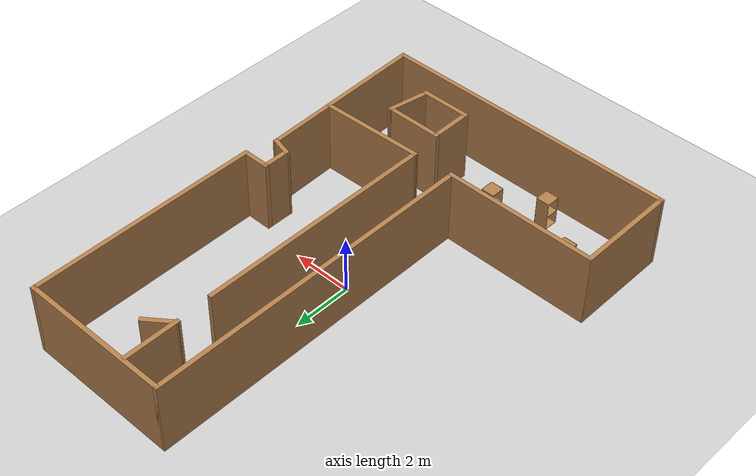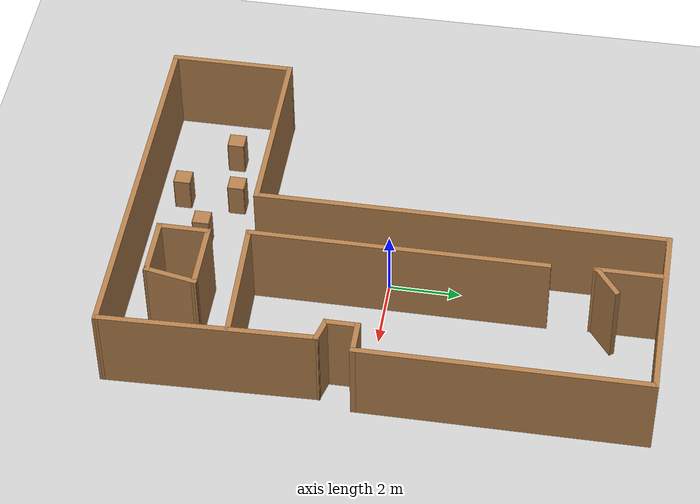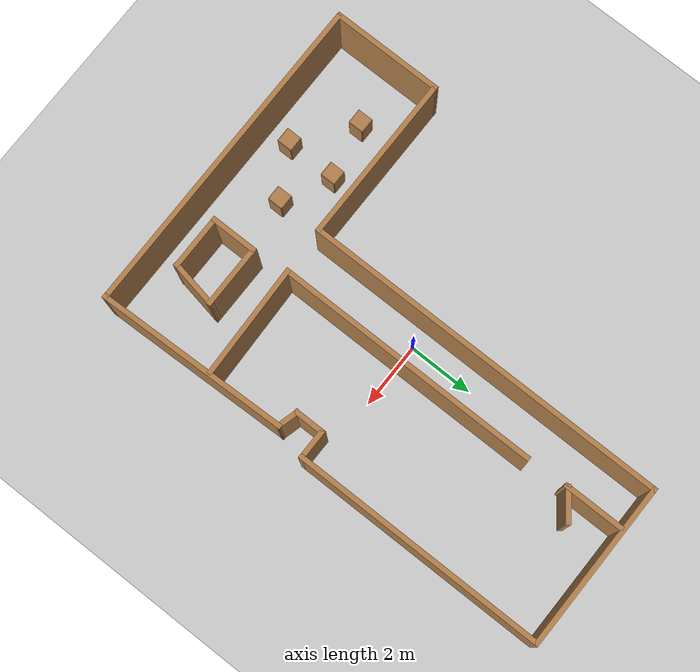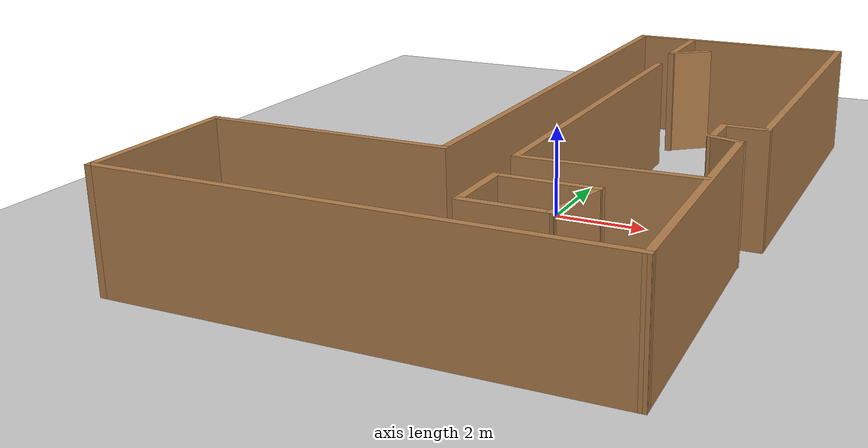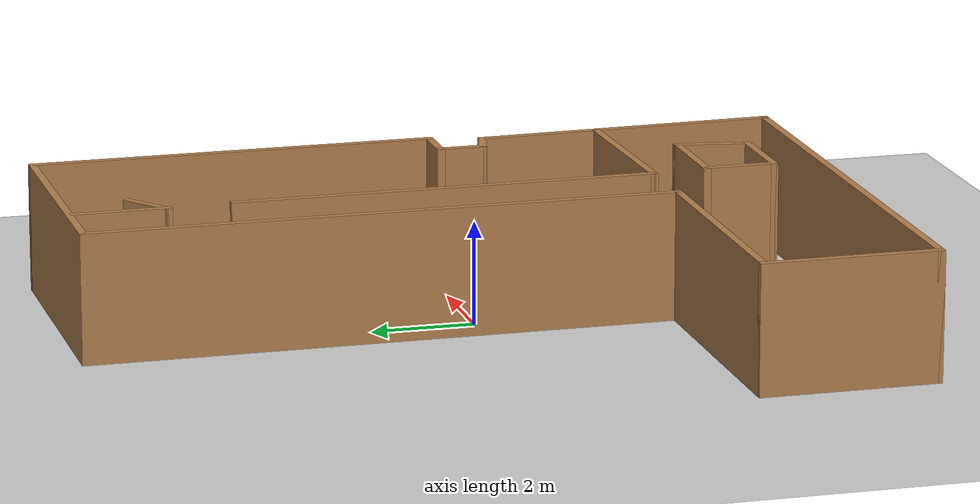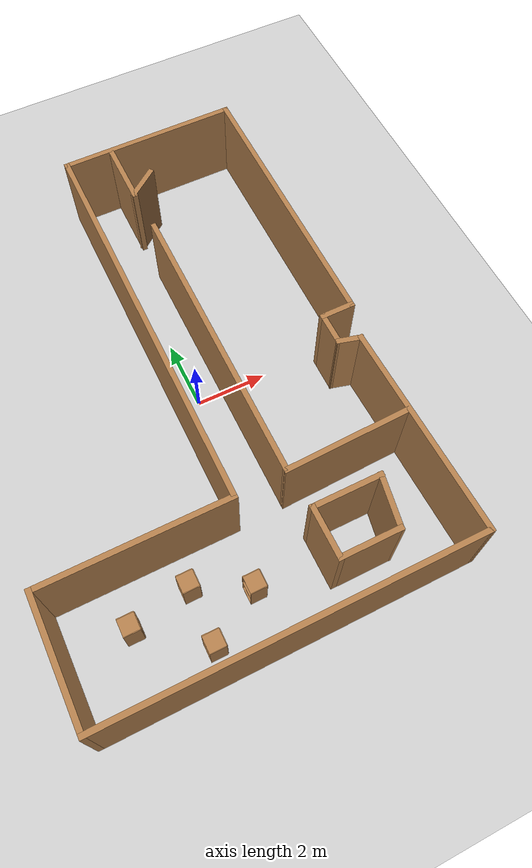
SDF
<sdf version="1.6">
 <world name="default">
  <model name="ground_plane">
   <static>1</static>
   <link name="link">
    <collision name="collision">
     <geometry><plane><normal>0 0 1</normal><size>100 100</size></plane></geometry>
     <surface><friction><ode><mu>100</mu><mu2>50</mu2></ode></friction></surface>
    </collision>
    <visual name="visual">
     <cast_shadows>0</cast_shadows>
     <geometry><plane><normal>0 0 1</normal><size>100 100</size></plane></geometry>
     <material>
      <script><uri>file://media/materials/scripts/gazebo.material</uri><name>Gazebo/Grey</name></script>
     </material>
    </visual>
   </link>
  </model>
  <model name="map_25">
   <link name="Wall_0">
    <pose>-0.05 -7.34892 0 0 -0 3.14159</pose>
    <visual name="Wall_0_Visual">
     <pose>0 0 1.25 0 -0 0</pose>
     <geometry><box><size>10.25 0.15 2.5</size></box></geometry>
     <material>
      <script><uri>file://media/materials/scripts/gazebo.material</uri><name>Gazebo/Wood</name></script>
      <ambient>1 1 1 1</ambient>
      <shader type="pixel"/>
     </material>
     <meta><layer>0</layer></meta>
    </visual>
    <collision name="Wall_0_Collision">
     <pose>0 0 1.25 0 -0 0</pose>
     <geometry><box><size>10.25 0.15 2.5</size></box></geometry>
     <surface>
      <friction>
       <ode><mu>1</mu><mu2>1</mu2><fdir1>0 0 0</fdir1><slip1>0</slip1><slip2>0</slip2></ode>
       <torsional>
        <coefficient>1</coefficient>
        <patch_radius>0</patch_radius>
        <surface_radius>0</surface_radius>
        <use_patch_radius>1</use_patch_radius>
        <ode><slip>0</slip></ode>
       </torsional>
      </friction>
      <bounce><restitution_coefficient>0</restitution_coefficient><threshold>1e+06</threshold></bounce>
      <contact>
       <collide_without_contact>0</collide_without_contact>
       <collide_without_contact_bitmask>1</collide_without_contact_bitmask>
       <collide_bitmask>1</collide_bitmask>
       <ode>
        <soft_cfm>0</soft_cfm>
        <soft_erp>0.2</soft_erp>
        <kp>1e+13</kp>
        <kd>1</kd>
        <max_vel>0.01</max_vel>
        <min_depth>0</min_depth>
       </ode>
       <bullet>
        <split_impulse>1</split_impulse>
        <split_impulse_penetration_threshold>-0.01</split_impulse_penetration_threshold>
        <soft_cfm>0</soft_cfm>
        <soft_erp>0.2</soft_erp>
        <kp>1e+13</kp>
        <kd>1</kd>
       </bullet>
      </contact>
     </surface>
    </collision>
   </link>
   <link name="Wall_1">
    <pose>-5.1 -5.67392 0 0 -0 1.5708</pose>
    <visual name="Wall_1_Visual">
     <pose>0 0 1.25 0 -0 0</pose>
     <geometry><box><size>3.5 0.15 2.5</size></box></geometry>
     <material>
      <script><uri>file://media/materials/scripts/gazebo.material</uri><name>Gazebo/Wood</name></script>
      <ambient>1 1 1 1</ambient>
      <shader type="pixel"/>
     </material>
     <meta><layer>0</layer></meta>
    </visual>
    <collision name="Wall_1_Collision">
     <pose>0 0 1.25 0 -0 0</pose>
     <geometry><box><size>3.5 0.15 2.5</size></box></geometry>
     <surface>
      <friction>
       <ode><mu>1</mu><mu2>1</mu2><fdir1>0 0 0</fdir1><slip1>0</slip1><slip2>0</slip2></ode>
       <torsional>
        <coefficient>1</coefficient>
        <patch_radius>0</patch_radius>
        <surface_radius>0</surface_radius>
        <use_patch_radius>1</use_patch_radius>
        <ode><slip>0</slip></ode>
       </torsional>
      </friction>
      <bounce><restitution_coefficient>0</restitution_coefficient><threshold>1e+06</threshold></bounce>
      <contact>
       <collide_without_contact>0</collide_without_contact>
       <collide_without_contact_bitmask>1</collide_without_contact_bitmask>
       <collide_bitmask>1</collide_bitmask>
       <ode>
        <soft_cfm>0</soft_cfm>
        <soft_erp>0.2</soft_erp>
        <kp>1e+13</kp>
        <kd>1</kd>
        <max_vel>0.01</max_vel>
        <min_depth>0</min_depth>
       </ode>
       <bullet>
        <split_impulse>1</split_impulse>
        <split_impulse_penetration_threshold>-0.01</split_impulse_penetration_threshold>
        <soft_cfm>0</soft_cfm>
        <soft_erp>0.2</soft_erp>
        <kp>1e+13</kp>
        <kd>1</kd>
       </bullet>
      </contact>
     </surface>
    </collision>
   </link>
   <link name="Wall_14">
    <pose>1.41533 0.157617 0 0 0 -1.5708</pose>
    <visual name="Wall_14_Visual">
     <pose>0 0 1.25 0 -0 0</pose>
     <geometry><box><size>8.25 0.15 2.5</size></box></geometry>
     <material>
      <script><uri>file://media/materials/scripts/gazebo.material</uri><name>Gazebo/Wood</name></script>
      <ambient>1 1 1 1</ambient>
      <shader type="pixel"/>
     </material>
     <meta><layer>0</layer></meta>
    </visual>
    <collision name="Wall_14_Collision">
     <pose>0 0 1.25 0 -0 0</pose>
     <geometry><box><size>8.25 0.15 2.5</size></box></geometry>
     <surface>
      <friction>
       <ode><mu>1</mu><mu2>1</mu2><fdir1>0 0 0</fdir1><slip1>0</slip1><slip2>0</slip2></ode>
       <torsional>
        <coefficient>1</coefficient>
        <patch_radius>0</patch_radius>
        <surface_radius>0</surface_radius>
        <use_patch_radius>1</use_patch_radius>
        <ode><slip>0</slip></ode>
       </torsional>
      </friction>
      <bounce><restitution_coefficient>0</restitution_coefficient><threshold>1e+06</threshold></bounce>
      <contact>
       <collide_without_contact>0</collide_without_contact>
       <collide_without_contact_bitmask>1</collide_without_contact_bitmask>
       <collide_bitmask>1</collide_bitmask>
       <ode>
        <soft_cfm>0</soft_cfm>
        <soft_erp>0.2</soft_erp>
        <kp>1e+13</kp>
        <kd>1</kd>
        <max_vel>0.01</max_vel>
        <min_depth>0</min_depth>
       </ode>
       <bullet>
        <split_impulse>1</split_impulse>
        <split_impulse_penetration_threshold>-0.01</split_impulse_penetration_threshold>
        <soft_cfm>0</soft_cfm>
        <soft_erp>0.2</soft_erp>
        <kp>1e+13</kp>
        <kd>1</kd>
       </bullet>
      </contact>
     </surface>
    </collision>
   </link>
   <link name="Wall_15">
    <pose>3.12632 -3.89238 0 0 -0 0.03126</pose>
    <visual name="Wall_15_Visual">
     <pose>0 0 1.25 0 -0 0</pose>
     <geometry><box><size>3.57365 0.15 2.5</size></box></geometry>
     <material>
      <script><uri>file://media/materials/scripts/gazebo.material</uri><name>Gazebo/Wood</name></script>
      <ambient>1 1 1 1</ambient>
      <shader type="pixel"/>
     </material>
     <meta><layer>0</layer></meta>
    </visual>
    <collision name="Wall_15_Collision">
     <pose>0 0 1.25 0 -0 0</pose>
     <geometry><box><size>3.57365 0.15 2.5</size></box></geometry>
     <surface>
      <friction>
       <ode><mu>1</mu><mu2>1</mu2><fdir1>0 0 0</fdir1><slip1>0</slip1><slip2>0</slip2></ode>
       <torsional>
        <coefficient>1</coefficient>
        <patch_radius>0</patch_radius>
        <surface_radius>0</surface_radius>
        <use_patch_radius>1</use_patch_radius>
        <ode><slip>0</slip></ode>
       </torsional>
      </friction>
      <bounce><restitution_coefficient>0</restitution_coefficient><threshold>1e+06</threshold></bounce>
      <contact>
       <collide_without_contact>0</collide_without_contact>
       <collide_without_contact_bitmask>1</collide_without_contact_bitmask>
       <collide_bitmask>1</collide_bitmask>
       <ode>
        <soft_cfm>0</soft_cfm>
        <soft_erp>0.2</soft_erp>
        <kp>1e+13</kp>
        <kd>1</kd>
        <max_vel>0.01</max_vel>
        <min_depth>0</min_depth>
       </ode>
       <bullet>
        <split_impulse>1</split_impulse>
        <split_impulse_penetration_threshold>-0.01</split_impulse_penetration_threshold>
        <soft_cfm>0</soft_cfm>
        <soft_erp>0.2</soft_erp>
        <kp>1e+13</kp>
        <kd>1</kd>
       </bullet>
      </contact>
     </surface>
    </collision>
   </link>
   <link name="Wall_2">
    <pose>-2.55 -3.99892 0 0 -0 0</pose>
    <visual name="Wall_2_Visual">
     <pose>0 0 1.25 0 -0 0</pose>
     <geometry><box><size>5.25 0.15 2.5</size></box></geometry>
     <material>
      <script><uri>file://media/materials/scripts/gazebo.material</uri><name>Gazebo/Wood</name></script>
      <ambient>1 1 1 1</ambient>
      <shader type="pixel"/>
     </material>
     <meta><layer>0</layer></meta>
    </visual>
    <collision name="Wall_2_Collision">
     <pose>0 0 1.25 0 -0 0</pose>
     <geometry><box><size>5.25 0.15 2.5</size></box></geometry>
     <surface>
      <friction>
       <ode><mu>1</mu><mu2>1</mu2><fdir1>0 0 0</fdir1><slip1>0</slip1><slip2>0</slip2></ode>
       <torsional>
        <coefficient>1</coefficient>
        <patch_radius>0</patch_radius>
        <surface_radius>0</surface_radius>
        <use_patch_radius>1</use_patch_radius>
        <ode><slip>0</slip></ode>
       </torsional>
      </friction>
      <bounce><restitution_coefficient>0</restitution_coefficient><threshold>1e+06</threshold></bounce>
      <contact>
       <collide_without_contact>0</collide_without_contact>
       <collide_without_contact_bitmask>1</collide_without_contact_bitmask>
       <collide_bitmask>1</collide_bitmask>
       <ode>
        <soft_cfm>0</soft_cfm>
        <soft_erp>0.2</soft_erp>
        <kp>1e+13</kp>
        <kd>1</kd>
        <max_vel>0.01</max_vel>
        <min_depth>0</min_depth>
       </ode>
       <bullet>
        <split_impulse>1</split_impulse>
        <split_impulse_penetration_threshold>-0.01</split_impulse_penetration_threshold>
        <soft_cfm>0</soft_cfm>
        <soft_erp>0.2</soft_erp>
        <kp>1e+13</kp>
        <kd>1</kd>
       </bullet>
      </contact>
     </surface>
    </collision>
   </link>
   <link name="Wall_29">
    <pose>1.35601 6.37111 0 0 0 -1.5708</pose>
    <visual name="Wall_29_Visual">
     <pose>0 0 1.25 0 -0 0</pose>
     <geometry><box><size>1.92214 0.15 2.5</size></box></geometry>
     <material>
      <script><uri>file://media/materials/scripts/gazebo.material</uri><name>Gazebo/Wood</name></script>
      <ambient>1 1 1 1</ambient>
      <shader type="pixel"/>
     </material>
     <meta><layer>0</layer></meta>
    </visual>
    <collision name="Wall_29_Collision">
     <pose>0 0 1.25 0 -0 0</pose>
     <geometry><box><size>1.92214 0.15 2.5</size></box></geometry>
     <surface>
      <friction>
       <ode><mu>1</mu><mu2>1</mu2><fdir1>0 0 0</fdir1><slip1>0</slip1><slip2>0</slip2></ode>
       <torsional>
        <coefficient>1</coefficient>
        <patch_radius>0</patch_radius>
        <surface_radius>0</surface_radius>
        <use_patch_radius>1</use_patch_radius>
        <ode><slip>0</slip></ode>
       </torsional>
      </friction>
      <bounce><restitution_coefficient>0</restitution_coefficient><threshold>1e+06</threshold></bounce>
      <contact>
       <collide_without_contact>0</collide_without_contact>
       <collide_without_contact_bitmask>1</collide_without_contact_bitmask>
       <collide_bitmask>1</collide_bitmask>
       <ode>
        <soft_cfm>0</soft_cfm>
        <soft_erp>0.2</soft_erp>
        <kp>1e+13</kp>
        <kd>1</kd>
        <max_vel>0.01</max_vel>
        <min_depth>0</min_depth>
       </ode>
       <bullet>
        <split_impulse>1</split_impulse>
        <split_impulse_penetration_threshold>-0.01</split_impulse_penetration_threshold>
        <soft_cfm>0</soft_cfm>
        <soft_erp>0.2</soft_erp>
        <kp>1e+13</kp>
        <kd>1</kd>
       </bullet>
      </contact>
     </surface>
    </collision>
   </link>
   <link name="Wall_3">
    <pose>0 1.67608 0 0 -0 1.5708</pose>
    <visual name="Wall_3_Visual">
     <pose>0 0 1.25 0 -0 0</pose>
     <geometry><box><size>11.5 0.15 2.5</size></box></geometry>
     <material>
      <script><uri>file://media/materials/scripts/gazebo.material</uri><name>Gazebo/Wood</name></script>
      <ambient>1 1 1 1</ambient>
      <shader type="pixel"/>
     </material>
     <meta><layer>0</layer></meta>
    </visual>
    <collision name="Wall_3_Collision">
     <pose>0 0 1.25 0 -0 0</pose>
     <geometry><box><size>11.5 0.15 2.5</size></box></geometry>
     <surface>
      <friction>
       <ode><mu>1</mu><mu2>1</mu2><fdir1>0 0 0</fdir1><slip1>0</slip1><slip2>0</slip2></ode>
       <torsional>
        <coefficient>1</coefficient>
        <patch_radius>0</patch_radius>
        <surface_radius>0</surface_radius>
        <use_patch_radius>1</use_patch_radius>
        <ode><slip>0</slip></ode>
       </torsional>
      </friction>
      <bounce><restitution_coefficient>0</restitution_coefficient><threshold>1e+06</threshold></bounce>
      <contact>
       <collide_without_contact>0</collide_without_contact>
       <collide_without_contact_bitmask>1</collide_without_contact_bitmask>
       <collide_bitmask>1</collide_bitmask>
       <ode>
        <soft_cfm>0</soft_cfm>
        <soft_erp>0.2</soft_erp>
        <kp>1e+13</kp>
        <kd>1</kd>
        <max_vel>0.01</max_vel>
        <min_depth>0</min_depth>
       </ode>
       <bullet>
        <split_impulse>1</split_impulse>
        <split_impulse_penetration_threshold>-0.01</split_impulse_penetration_threshold>
        <soft_cfm>0</soft_cfm>
        <soft_erp>0.2</soft_erp>
        <kp>1e+13</kp>
        <kd>1</kd>
       </bullet>
      </contact>
     </surface>
    </collision>
   </link>
   <link name="Wall_30">
    <pose>1.72407 5.80307 0 0 -0 0.655241</pose>
    <visual name="Wall_30_Visual">
     <pose>0 0 1.25 0 -0 0</pose>
     <geometry><box><size>1.07839 0.15 2.5</size></box></geometry>
     <material>
      <script><uri>file://media/materials/scripts/gazebo.material</uri><name>Gazebo/Wood</name></script>
      <ambient>1 1 1 1</ambient>
      <shader type="pixel"/>
     </material>
     <meta><layer>0</layer></meta>
    </visual>
    <collision name="Wall_30_Collision">
     <pose>0 0 1.25 0 -0 0</pose>
     <geometry><box><size>1.07839 0.15 2.5</size></box></geometry>
     <surface>
      <friction>
       <ode><mu>1</mu><mu2>1</mu2><fdir1>0 0 0</fdir1><slip1>0</slip1><slip2>0</slip2></ode>
       <torsional>
        <coefficient>1</coefficient>
        <patch_radius>0</patch_radius>
        <surface_radius>0</surface_radius>
        <use_patch_radius>1</use_patch_radius>
        <ode><slip>0</slip></ode>
       </torsional>
      </friction>
      <bounce><restitution_coefficient>0</restitution_coefficient><threshold>1e+06</threshold></bounce>
      <contact>
       <collide_without_contact>0</collide_without_contact>
       <collide_without_contact_bitmask>1</collide_without_contact_bitmask>
       <collide_bitmask>1</collide_bitmask>
       <ode>
        <soft_cfm>0</soft_cfm>
        <soft_erp>0.2</soft_erp>
        <kp>1e+13</kp>
        <kd>1</kd>
        <max_vel>0.01</max_vel>
        <min_depth>0</min_depth>
       </ode>
       <bullet>
        <split_impulse>1</split_impulse>
        <split_impulse_penetration_threshold>-0.01</split_impulse_penetration_threshold>
        <soft_cfm>0</soft_cfm>
        <soft_erp>0.2</soft_erp>
        <kp>1e+13</kp>
        <kd>1</kd>
       </bullet>
      </contact>
     </surface>
    </collision>
   </link>
   <link name="Wall_32">
    <pose>2.46009 -5.04355 0 0 -0 3.14159</pose>
    <visual name="Wall_32_Visual">
     <pose>0 0 1.25 0 -0 0</pose>
     <geometry><box><size>2 0.15 2.5</size></box></geometry>
     <material>
      <script><uri>file://media/materials/scripts/gazebo.material</uri><name>Gazebo/Wood</name></script>
      <ambient>1 1 1 1</ambient>
      <shader type="pixel"/>
     </material>
     <meta><layer>0</layer></meta>
    </visual>
    <collision name="Wall_32_Collision">
     <pose>0 0 1.25 0 -0 0</pose>
     <geometry><box><size>2 0.15 2.5</size></box></geometry>
     <surface>
      <friction>
       <ode><mu>1</mu><mu2>1</mu2><fdir1>0 0 0</fdir1><slip1>0</slip1><slip2>0</slip2></ode>
       <torsional>
        <coefficient>1</coefficient>
        <patch_radius>0</patch_radius>
        <surface_radius>0</surface_radius>
        <use_patch_radius>1</use_patch_radius>
        <ode><slip>0</slip></ode>
       </torsional>
      </friction>
      <bounce><restitution_coefficient>0</restitution_coefficient><threshold>1e+06</threshold></bounce>
      <contact>
       <collide_without_contact>0</collide_without_contact>
       <collide_without_contact_bitmask>1</collide_without_contact_bitmask>
       <collide_bitmask>1</collide_bitmask>
       <ode>
        <soft_cfm>0</soft_cfm>
        <soft_erp>0.2</soft_erp>
        <kp>1e+13</kp>
        <kd>1</kd>
        <max_vel>0.01</max_vel>
        <min_depth>0</min_depth>
       </ode>
       <bullet>
        <split_impulse>1</split_impulse>
        <split_impulse_penetration_threshold>-0.01</split_impulse_penetration_threshold>
        <soft_cfm>0</soft_cfm>
        <soft_erp>0.2</soft_erp>
        <kp>1e+13</kp>
        <kd>1</kd>
       </bullet>
      </contact>
     </surface>
    </collision>
   </link>
   <link name="Wall_33">
    <pose>1.53509 -5.71855 0 0 0 -1.5708</pose>
    <visual name="Wall_33_Visual">
     <pose>0 0 1.25 0 -0 0</pose>
     <geometry><box><size>1.5 0.15 2.5</size></box></geometry>
     <material>
      <script><uri>file://media/materials/scripts/gazebo.material</uri><name>Gazebo/Wood</name></script>
      <ambient>1 1 1 1</ambient>
      <shader type="pixel"/>
     </material>
     <meta><layer>0</layer></meta>
    </visual>
    <collision name="Wall_33_Collision">
     <pose>0 0 1.25 0 -0 0</pose>
     <geometry><box><size>1.5 0.15 2.5</size></box></geometry>
     <surface>
      <friction>
       <ode><mu>1</mu><mu2>1</mu2><fdir1>0 0 0</fdir1><slip1>0</slip1><slip2>0</slip2></ode>
       <torsional>
        <coefficient>1</coefficient>
        <patch_radius>0</patch_radius>
        <surface_radius>0</surface_radius>
        <use_patch_radius>1</use_patch_radius>
        <ode><slip>0</slip></ode>
       </torsional>
      </friction>
      <bounce><restitution_coefficient>0</restitution_coefficient><threshold>1e+06</threshold></bounce>
      <contact>
       <collide_without_contact>0</collide_without_contact>
       <collide_without_contact_bitmask>1</collide_without_contact_bitmask>
       <collide_bitmask>1</collide_bitmask>
       <ode>
        <soft_cfm>0</soft_cfm>
        <soft_erp>0.2</soft_erp>
        <kp>1e+13</kp>
        <kd>1</kd>
        <max_vel>0.01</max_vel>
        <min_depth>0</min_depth>
       </ode>
       <bullet>
        <split_impulse>1</split_impulse>
        <split_impulse_penetration_threshold>-0.01</split_impulse_penetration_threshold>
        <soft_cfm>0</soft_cfm>
        <soft_erp>0.2</soft_erp>
        <kp>1e+13</kp>
        <kd>1</kd>
       </bullet>
      </contact>
     </surface>
    </collision>
   </link>
   <link name="Wall_34">
    <pose>2.33509 -6.39355 0 0 -0 0</pose>
    <visual name="Wall_34_Visual">
     <pose>0 0 1.25 0 -0 0</pose>
     <geometry><box><size>1.75 0.15 2.5</size></box></geometry>
     <material>
      <script><uri>file://media/materials/scripts/gazebo.material</uri><name>Gazebo/Wood</name></script>
      <ambient>1 1 1 1</ambient>
      <shader type="pixel"/>
     </material>
     <meta><layer>0</layer></meta>
    </visual>
    <collision name="Wall_34_Collision">
     <pose>0 0 1.25 0 -0 0</pose>
     <geometry><box><size>1.75 0.15 2.5</size></box></geometry>
     <surface>
      <friction>
       <ode><mu>1</mu><mu2>1</mu2><fdir1>0 0 0</fdir1><slip1>0</slip1><slip2>0</slip2></ode>
       <torsional>
        <coefficient>1</coefficient>
        <patch_radius>0</patch_radius>
        <surface_radius>0</surface_radius>
        <use_patch_radius>1</use_patch_radius>
        <ode><slip>0</slip></ode>
       </torsional>
      </friction>
      <bounce><restitution_coefficient>0</restitution_coefficient><threshold>1e+06</threshold></bounce>
      <contact>
       <collide_without_contact>0</collide_without_contact>
       <collide_without_contact_bitmask>1</collide_without_contact_bitmask>
       <collide_bitmask>1</collide_bitmask>
       <ode>
        <soft_cfm>0</soft_cfm>
        <soft_erp>0.2</soft_erp>
        <kp>1e+13</kp>
        <kd>1</kd>
        <max_vel>0.01</max_vel>
        <min_depth>0</min_depth>
       </ode>
       <bullet>
        <split_impulse>1</split_impulse>
        <split_impulse_penetration_threshold>-0.01</split_impulse_penetration_threshold>
        <soft_cfm>0</soft_cfm>
        <soft_erp>0.2</soft_erp>
        <kp>1e+13</kp>
        <kd>1</kd>
       </bullet>
      </contact>
     </surface>
    </collision>
   </link>
   <link name="Wall_35">
    <pose>3.26009 -5.71855 0 0 -0 1.38769</pose>
    <visual name="Wall_35_Visual">
     <pose>0 0 1.25 0 -0 0</pose>
     <geometry><box><size>1.52295 0.15 2.5</size></box></geometry>
     <material>
      <script><uri>file://media/materials/scripts/gazebo.material</uri><name>Gazebo/Wood</name></script>
      <ambient>1 1 1 1</ambient>
      <shader type="pixel"/>
     </material>
     <meta><layer>0</layer></meta>
    </visual>
    <collision name="Wall_35_Collision">
     <pose>0 0 1.25 0 -0 0</pose>
     <geometry><box><size>1.52295 0.15 2.5</size></box></geometry>
     <surface>
      <friction>
       <ode><mu>1</mu><mu2>1</mu2><fdir1>0 0 0</fdir1><slip1>0</slip1><slip2>0</slip2></ode>
       <torsional>
        <coefficient>1</coefficient>
        <patch_radius>0</patch_radius>
        <surface_radius>0</surface_radius>
        <use_patch_radius>1</use_patch_radius>
        <ode><slip>0</slip></ode>
       </torsional>
      </friction>
      <bounce><restitution_coefficient>0</restitution_coefficient><threshold>1e+06</threshold></bounce>
      <contact>
       <collide_without_contact>0</collide_without_contact>
       <collide_without_contact_bitmask>1</collide_without_contact_bitmask>
       <collide_bitmask>1</collide_bitmask>
       <ode>
        <soft_cfm>0</soft_cfm>
        <soft_erp>0.2</soft_erp>
        <kp>1e+13</kp>
        <kd>1</kd>
        <max_vel>0.01</max_vel>
        <min_depth>0</min_depth>
       </ode>
       <bullet>
        <split_impulse>1</split_impulse>
        <split_impulse_penetration_threshold>-0.01</split_impulse_penetration_threshold>
        <soft_cfm>0</soft_cfm>
        <soft_erp>0.2</soft_erp>
        <kp>1e+13</kp>
        <kd>1</kd>
       </bullet>
      </contact>
     </surface>
    </collision>
   </link>
   <link name="Wall_4">
    <pose>2.55 7.35108 0 0 -0 0</pose>
    <visual name="Wall_4_Visual">
     <pose>0 0 1.25 0 -0 0</pose>
     <geometry><box><size>5.25 0.15 2.5</size></box></geometry>
     <material>
      <script><uri>file://media/materials/scripts/gazebo.material</uri><name>Gazebo/Wood</name></script>
      <ambient>1 1 1 1</ambient>
      <shader type="pixel"/>
     </material>
     <meta><layer>0</layer></meta>
    </visual>
    <collision name="Wall_4_Collision">
     <pose>0 0 1.25 0 -0 0</pose>
     <geometry><box><size>5.25 0.15 2.5</size></box></geometry>
     <surface>
      <friction>
       <ode><mu>1</mu><mu2>1</mu2><fdir1>0 0 0</fdir1><slip1>0</slip1><slip2>0</slip2></ode>
       <torsional>
        <coefficient>1</coefficient>
        <patch_radius>0</patch_radius>
        <surface_radius>0</surface_radius>
        <use_patch_radius>1</use_patch_radius>
        <ode><slip>0</slip></ode>
       </torsional>
      </friction>
      <bounce><restitution_coefficient>0</restitution_coefficient><threshold>1e+06</threshold></bounce>
      <contact>
       <collide_without_contact>0</collide_without_contact>
       <collide_without_contact_bitmask>1</collide_without_contact_bitmask>
       <collide_bitmask>1</collide_bitmask>
       <ode>
        <soft_cfm>0</soft_cfm>
        <soft_erp>0.2</soft_erp>
        <kp>1e+13</kp>
        <kd>1</kd>
        <max_vel>0.01</max_vel>
        <min_depth>0</min_depth>
       </ode>
       <bullet>
        <split_impulse>1</split_impulse>
        <split_impulse_penetration_threshold>-0.01</split_impulse_penetration_threshold>
        <soft_cfm>0</soft_cfm>
        <soft_erp>0.2</soft_erp>
        <kp>1e+13</kp>
        <kd>1</kd>
       </bullet>
      </contact>
     </surface>
    </collision>
   </link>
   <link name="Wall_5">
    <pose>5.1 3.42608 0 0 0 -1.5708</pose>
    <visual name="Wall_5_Visual">
     <pose>0 0 1.25 0 -0 0</pose>
     <geometry><box><size>8 0.15 2.5</size></box></geometry>
     <material>
      <script><uri>file://media/materials/scripts/gazebo.material</uri><name>Gazebo/Wood</name></script>
      <ambient>1 1 1 1</ambient>
      <shader type="pixel"/>
     </material>
     <meta><layer>0</layer></meta>
    </visual>
    <collision name="Wall_5_Collision">
     <pose>0 0 1.25 0 -0 0</pose>
     <geometry><box><size>8 0.15 2.5</size></box></geometry>
     <surface>
      <friction>
       <ode><mu>1</mu><mu2>1</mu2><fdir1>0 0 0</fdir1><slip1>0</slip1><slip2>0</slip2></ode>
       <torsional>
        <coefficient>1</coefficient>
        <patch_radius>0</patch_radius>
        <surface_radius>0</surface_radius>
        <use_patch_radius>1</use_patch_radius>
        <ode><slip>0</slip></ode>
       </torsional>
      </friction>
      <bounce><restitution_coefficient>0</restitution_coefficient><threshold>1e+06</threshold></bounce>
      <contact>
       <collide_without_contact>0</collide_without_contact>
       <collide_without_contact_bitmask>1</collide_without_contact_bitmask>
       <collide_bitmask>1</collide_bitmask>
       <ode>
        <soft_cfm>0</soft_cfm>
        <soft_erp>0.2</soft_erp>
        <kp>1e+13</kp>
        <kd>1</kd>
        <max_vel>0.01</max_vel>
        <min_depth>0</min_depth>
       </ode>
       <bullet>
        <split_impulse>1</split_impulse>
        <split_impulse_penetration_threshold>-0.01</split_impulse_penetration_threshold>
        <soft_cfm>0</soft_cfm>
        <soft_erp>0.2</soft_erp>
        <kp>1e+13</kp>
        <kd>1</kd>
       </bullet>
      </contact>
     </surface>
    </collision>
   </link>
   <link name="Wall_6">
    <pose>4.675 -0.498923 0 0 -0 3.14159</pose>
    <visual name="Wall_6_Visual">
     <pose>0 0 1.25 0 -0 0</pose>
     <geometry><box><size>1 0.15 2.5</size></box></geometry>
     <material>
      <script><uri>file://media/materials/scripts/gazebo.material</uri><name>Gazebo/Wood</name></script>
      <ambient>1 1 1 1</ambient>
      <shader type="pixel"/>
     </material>
     <meta><layer>0</layer></meta>
    </visual>
    <collision name="Wall_6_Collision">
     <pose>0 0 1.25 0 -0 0</pose>
     <geometry><box><size>1 0.15 2.5</size></box></geometry>
     <surface>
      <friction>
       <ode><mu>1</mu><mu2>1</mu2><fdir1>0 0 0</fdir1><slip1>0</slip1><slip2>0</slip2></ode>
       <torsional>
        <coefficient>1</coefficient>
        <patch_radius>0</patch_radius>
        <surface_radius>0</surface_radius>
        <use_patch_radius>1</use_patch_radius>
        <ode><slip>0</slip></ode>
       </torsional>
      </friction>
      <bounce><restitution_coefficient>0</restitution_coefficient><threshold>1e+06</threshold></bounce>
      <contact>
       <collide_without_contact>0</collide_without_contact>
       <collide_without_contact_bitmask>1</collide_without_contact_bitmask>
       <collide_bitmask>1</collide_bitmask>
       <ode>
        <soft_cfm>0</soft_cfm>
        <soft_erp>0.2</soft_erp>
        <kp>1e+13</kp>
        <kd>1</kd>
        <max_vel>0.01</max_vel>
        <min_depth>0</min_depth>
       </ode>
       <bullet>
        <split_impulse>1</split_impulse>
        <split_impulse_penetration_threshold>-0.01</split_impulse_penetration_threshold>
        <soft_cfm>0</soft_cfm>
        <soft_erp>0.2</soft_erp>
        <kp>1e+13</kp>
        <kd>1</kd>
       </bullet>
      </contact>
     </surface>
    </collision>
   </link>
   <link name="Wall_7">
    <pose>4.25 -0.923923 0 0 0 -1.5708</pose>
    <visual name="Wall_7_Visual">
     <pose>0 0 1.25 0 -0 0</pose>
     <geometry><box><size>1 0.15 2.5</size></box></geometry>
     <material>
      <script><uri>file://media/materials/scripts/gazebo.material</uri><name>Gazebo/Wood</name></script>
      <ambient>1 1 1 1</ambient>
      <shader type="pixel"/>
     </material>
     <meta><layer>0</layer></meta>
    </visual>
    <collision name="Wall_7_Collision">
     <pose>0 0 1.25 0 -0 0</pose>
     <geometry><box><size>1 0.15 2.5</size></box></geometry>
     <surface>
      <friction>
       <ode><mu>1</mu><mu2>1</mu2><fdir1>0 0 0</fdir1><slip1>0</slip1><slip2>0</slip2></ode>
       <torsional>
        <coefficient>1</coefficient>
        <patch_radius>0</patch_radius>
        <surface_radius>0</surface_radius>
        <use_patch_radius>1</use_patch_radius>
        <ode><slip>0</slip></ode>
       </torsional>
      </friction>
      <bounce><restitution_coefficient>0</restitution_coefficient><threshold>1e+06</threshold></bounce>
      <contact>
       <collide_without_contact>0</collide_without_contact>
       <collide_without_contact_bitmask>1</collide_without_contact_bitmask>
       <collide_bitmask>1</collide_bitmask>
       <ode>
        <soft_cfm>0</soft_cfm>
        <soft_erp>0.2</soft_erp>
        <kp>1e+13</kp>
        <kd>1</kd>
        <max_vel>0.01</max_vel>
        <min_depth>0</min_depth>
       </ode>
       <bullet>
        <split_impulse>1</split_impulse>
        <split_impulse_penetration_threshold>-0.01</split_impulse_penetration_threshold>
        <soft_cfm>0</soft_cfm>
        <soft_erp>0.2</soft_erp>
        <kp>1e+13</kp>
        <kd>1</kd>
       </bullet>
      </contact>
     </surface>
    </collision>
   </link>
   <link name="Wall_8">
    <pose>4.53978 -1.42657 0 0 0 -0.261799</pose>
    <visual name="Wall_8_Visual">
     <pose>0 0 1.25 0 -0 0</pose>
     <geometry><box><size>0.75 0.15 2.5</size></box></geometry>
     <material>
      <script><uri>file://media/materials/scripts/gazebo.material</uri><name>Gazebo/Wood</name></script>
      <ambient>1 1 1 1</ambient>
      <shader type="pixel"/>
     </material>
     <meta><layer>0</layer></meta>
    </visual>
    <collision name="Wall_8_Collision">
     <pose>0 0 1.25 0 -0 0</pose>
     <geometry><box><size>0.75 0.15 2.5</size></box></geometry>
     <surface>
      <friction>
       <ode><mu>1</mu><mu2>1</mu2><fdir1>0 0 0</fdir1><slip1>0</slip1><slip2>0</slip2></ode>
       <torsional>
        <coefficient>1</coefficient>
        <patch_radius>0</patch_radius>
        <surface_radius>0</surface_radius>
        <use_patch_radius>1</use_patch_radius>
        <ode><slip>0</slip></ode>
       </torsional>
      </friction>
      <bounce><restitution_coefficient>0</restitution_coefficient><threshold>1e+06</threshold></bounce>
      <contact>
       <collide_without_contact>0</collide_without_contact>
       <collide_without_contact_bitmask>1</collide_without_contact_bitmask>
       <collide_bitmask>1</collide_bitmask>
       <ode>
        <soft_cfm>0</soft_cfm>
        <soft_erp>0.2</soft_erp>
        <kp>1e+13</kp>
        <kd>1</kd>
        <max_vel>0.01</max_vel>
        <min_depth>0</min_depth>
       </ode>
       <bullet>
        <split_impulse>1</split_impulse>
        <split_impulse_penetration_threshold>-0.01</split_impulse_penetration_threshold>
        <soft_cfm>0</soft_cfm>
        <soft_erp>0.2</soft_erp>
        <kp>1e+13</kp>
        <kd>1</kd>
       </bullet>
      </contact>
     </surface>
    </collision>
   </link>
   <link name="Wall_9">
    <pose>4.91478 -4.42657 0 0 0 -1.54164</pose>
    <visual name="Wall_9_Visual">
     <pose>0 0 1.25 0 -0 0</pose>
     <geometry><box><size>5.99719 0.15 2.5</size></box></geometry>
     <material>
      <script><uri>file://media/materials/scripts/gazebo.material</uri><name>Gazebo/Wood</name></script>
      <ambient>1 1 1 1</ambient>
      <shader type="pixel"/>
     </material>
     <meta><layer>0</layer></meta>
    </visual>
    <collision name="Wall_9_Collision">
     <pose>0 0 1.25 0 -0 0</pose>
     <geometry><box><size>5.99719 0.15 2.5</size></box></geometry>
     <surface>
      <friction>
       <ode><mu>1</mu><mu2>1</mu2><fdir1>0 0 0</fdir1><slip1>0</slip1><slip2>0</slip2></ode>
       <torsional>
        <coefficient>1</coefficient>
        <patch_radius>0</patch_radius>
        <surface_radius>0</surface_radius>
        <use_patch_radius>1</use_patch_radius>
        <ode><slip>0</slip></ode>
       </torsional>
      </friction>
      <bounce><restitution_coefficient>0</restitution_coefficient><threshold>1e+06</threshold></bounce>
      <contact>
       <collide_without_contact>0</collide_without_contact>
       <collide_without_contact_bitmask>1</collide_without_contact_bitmask>
       <collide_bitmask>1</collide_bitmask>
       <ode>
        <soft_cfm>0</soft_cfm>
        <soft_erp>0.2</soft_erp>
        <kp>1e+13</kp>
        <kd>1</kd>
        <max_vel>0.01</max_vel>
        <min_depth>0</min_depth>
       </ode>
       <bullet>
        <split_impulse>1</split_impulse>
        <split_impulse_penetration_threshold>-0.01</split_impulse_penetration_threshold>
        <soft_cfm>0</soft_cfm>
        <soft_erp>0.2</soft_erp>
        <kp>1e+13</kp>
        <kd>1</kd>
       </bullet>
      </contact>
     </surface>
    </collision>
   </link>
   <static>1</static>
   <pose>-0.646899 0.20594 0 0 -0 0</pose>
  </model>
  <model name="cabinet">
   <static>1</static>
   <link name="cabinet_bottom_plate">
    <inertial>
     <pose>0 0 -1 0 -0 0</pose>
     <inertia><ixx>2.05</ixx><ixy>0</ixy><ixz>0</ixz><iyy>2.05</iyy><iyz>0</iyz><izz>2.05</izz></inertia>
     <mass>25</mass>
    </inertial>
    <collision name="cabinet_bottom_plate_geom">
     <pose>0 0 0.01 0 -0 0</pose>
     <geometry><box><size>0.45 0.45 0.02</size></box></geometry>
    </collision>
    <visual name="cabinet_bottom_plate_geom_visual">
     <pose>0 0 0.01 0 -0 0</pose>
     <geometry><box><size>0.45 0.45 0.02</size></box></geometry>
     <material>
      <script><uri>file://media/materials/scripts/gazebo.material</uri><name>Gazebo/Wood</name></script>
     </material>
    </visual>
    <collision name="cabinet_bottom_plate_geom_cabinet_back_plate">
     <pose>0.235 0 0.51 0 -0 0</pose>
     <geometry><box><size>0.02 0.45 1.02</size></box></geometry>
    </collision>
    <visual name="cabinet_bottom_plate_geom_cabinet_back_plate_visual">
     <pose>0.235 0 0.51 0 -0 0</pose>
     <geometry><box><size>0.02 0.45 1.02</size></box></geometry>
     <material>
      <script><uri>file://media/materials/scripts/gazebo.material</uri><name>Gazebo/Wood</name></script>
     </material>
    </visual>
    <collision name="cabinet_bottom_plate_geom_cabinet_left_plate">
     <pose>0 0.235 0.51 0 -0 0</pose>
     <geometry><box><size>0.45 0.02 1.02</size></box></geometry>
    </collision>
    <visual name="cabinet_bottom_plate_geom_cabinet_left_plate_visual">
     <pose>0 0.235 0.51 0 -0 0</pose>
     <geometry><box><size>0.45 0.02 1.02</size></box></geometry>
     <material>
      <script><uri>file://media/materials/scripts/gazebo.material</uri><name>Gazebo/Wood</name></script>
     </material>
    </visual>
    <collision name="cabinet_bottom_plate_geom_cabinet_middle_plate">
     <pose>0 0 0.51 0 -0 0</pose>
     <geometry><box><size>0.45 0.45 0.02</size></box></geometry>
    </collision>
    <visual name="cabinet_bottom_plate_geom_cabinet_middle_plate_visual">
     <pose>0 0 0.51 0 -0 0</pose>
     <geometry><box><size>0.45 0.45 0.02</size></box></geometry>
     <material>
      <script><uri>file://media/materials/scripts/gazebo.material</uri><name>Gazebo/Wood</name></script>
     </material>
    </visual>
    <collision name="cabinet_bottom_plate_geom_cabinet_right_plate">
     <pose>0 -0.235 0.51 0 -0 0</pose>
     <geometry><box><size>0.45 0.02 1.02</size></box></geometry>
    </collision>
    <visual name="cabinet_bottom_plate_geom_cabinet_right_plate_visual">
     <pose>0 -0.235 0.51 0 -0 0</pose>
     <geometry><box><size>0.45 0.02 1.02</size></box></geometry>
     <material>
      <script><uri>file://media/materials/scripts/gazebo.material</uri><name>Gazebo/Wood</name></script>
     </material>
    </visual>
    <collision name="cabinet_bottom_plate_geom_cabinet_top_plate">
     <pose>0 0 1.01 0 -0 0</pose>
     <geometry><box><size>0.45 0.45 0.02</size></box></geometry>
    </collision>
    <visual name="cabinet_bottom_plate_geom_cabinet_top_plate_visual">
     <pose>0 0 1.01 0 -0 0</pose>
     <geometry><box><size>0.45 0.45 0.02</size></box></geometry>
     <material>
      <script><uri>file://media/materials/scripts/gazebo.material</uri><name>Gazebo/Wood</name></script>
     </material>
    </visual>
   </link>
   <pose>-4.0742 -5.07825 0 0 -0 0</pose>
  </model>
  <model name="cabinet_0">
   <static>1</static>
   <link name="cabinet_bottom_plate">
    <inertial>
     <pose>0 0 -1 0 -0 0</pose>
     <inertia><ixx>2.05</ixx><ixy>0</ixy><ixz>0</ixz><iyy>2.05</iyy><iyz>0</iyz><izz>2.05</izz></inertia>
     <mass>25</mass>
    </inertial>
    <collision name="cabinet_bottom_plate_geom">
     <pose>0 0 0.01 0 -0 0</pose>
     <geometry><box><size>0.45 0.45 0.02</size></box></geometry>
    </collision>
    <visual name="cabinet_bottom_plate_geom_visual">
     <pose>0 0 0.01 0 -0 0</pose>
     <geometry><box><size>0.45 0.45 0.02</size></box></geometry>
     <material>
      <script><uri>file://media/materials/scripts/gazebo.material</uri><name>Gazebo/Wood</name></script>
     </material>
    </visual>
    <collision name="cabinet_bottom_plate_geom_cabinet_back_plate">
     <pose>0.235 0 0.51 0 -0 0</pose>
     <geometry><box><size>0.02 0.45 1.02</size></box></geometry>
    </collision>
    <visual name="cabinet_bottom_plate_geom_cabinet_back_plate_visual">
     <pose>0.235 0 0.51 0 -0 0</pose>
     <geometry><box><size>0.02 0.45 1.02</size></box></geometry>
     <material>
      <script><uri>file://media/materials/scripts/gazebo.material</uri><name>Gazebo/Wood</name></script>
     </material>
    </visual>
    <collision name="cabinet_bottom_plate_geom_cabinet_left_plate">
     <pose>0 0.235 0.51 0 -0 0</pose>
     <geometry><box><size>0.45 0.02 1.02</size></box></geometry>
    </collision>
    <visual name="cabinet_bottom_plate_geom_cabinet_left_plate_visual">
     <pose>0 0.235 0.51 0 -0 0</pose>
     <geometry><box><size>0.45 0.02 1.02</size></box></geometry>
     <material>
      <script><uri>file://media/materials/scripts/gazebo.material</uri><name>Gazebo/Wood</name></script>
     </material>
    </visual>
    <collision name="cabinet_bottom_plate_geom_cabinet_middle_plate">
     <pose>0 0 0.51 0 -0 0</pose>
     <geometry><box><size>0.45 0.45 0.02</size></box></geometry>
    </collision>
    <visual name="cabinet_bottom_plate_geom_cabinet_middle_plate_visual">
     <pose>0 0 0.51 0 -0 0</pose>
     <geometry><box><size>0.45 0.45 0.02</size></box></geometry>
     <material>
      <script><uri>file://media/materials/scripts/gazebo.material</uri><name>Gazebo/Wood</name></script>
     </material>
    </visual>
    <collision name="cabinet_bottom_plate_geom_cabinet_right_plate">
     <pose>0 -0.235 0.51 0 -0 0</pose>
     <geometry><box><size>0.45 0.02 1.02</size></box></geometry>
    </collision>
    <visual name="cabinet_bottom_plate_geom_cabinet_right_plate_visual">
     <pose>0 -0.235 0.51 0 -0 0</pose>
     <geometry><box><size>0.45 0.02 1.02</size></box></geometry>
     <material>
      <script><uri>file://media/materials/scripts/gazebo.material</uri><name>Gazebo/Wood</name></script>
     </material>
    </visual>
    <collision name="cabinet_bottom_plate_geom_cabinet_top_plate">
     <pose>0 0 1.01 0 -0 0</pose>
     <geometry><box><size>0.45 0.45 0.02</size></box></geometry>
    </collision>
    <visual name="cabinet_bottom_plate_geom_cabinet_top_plate_visual">
     <pose>0 0 1.01 0 -0 0</pose>
     <geometry><box><size>0.45 0.45 0.02</size></box></geometry>
     <material>
      <script><uri>file://media/materials/scripts/gazebo.material</uri><name>Gazebo/Wood</name></script>
     </material>
    </visual>
   </link>
   <pose>-2.4095 -6.31812 0 0 -0 0</pose>
  </model>
  <model name="cabinet_1">
   <static>1</static>
   <link name="cabinet_bottom_plate">
    <inertial>
     <pose>0 0 -1 0 -0 0</pose>
     <inertia><ixx>2.05</ixx><ixy>0</ixy><ixz>0</ixz><iyy>2.05</iyy><iyz>0</iyz><izz>2.05</izz></inertia>
     <mass>25</mass>
    </inertial>
    <collision name="cabinet_bottom_plate_geom">
     <pose>0 0 0.01 0 -0 0</pose>
     <geometry><box><size>0.45 0.45 0.02</size></box></geometry>
    </collision>
    <visual name="cabinet_bottom_plate_geom_visual">
     <pose>0 0 0.01 0 -0 0</pose>
     <geometry><box><size>0.45 0.45 0.02</size></box></geometry>
     <material>
      <script><uri>file://media/materials/scripts/gazebo.material</uri><name>Gazebo/Wood</name></script>
     </material>
    </visual>
    <collision name="cabinet_bottom_plate_geom_cabinet_back_plate">
     <pose>0.235 0 0.51 0 -0 0</pose>
     <geometry><box><size>0.02 0.45 1.02</size></box></geometry>
    </collision>
    <visual name="cabinet_bottom_plate_geom_cabinet_back_plate_visual">
     <pose>0.235 0 0.51 0 -0 0</pose>
     <geometry><box><size>0.02 0.45 1.02</size></box></geometry>
     <material>
      <script><uri>file://media/materials/scripts/gazebo.material</uri><name>Gazebo/Wood</name></script>
     </material>
    </visual>
    <collision name="cabinet_bottom_plate_geom_cabinet_left_plate">
     <pose>0 0.235 0.51 0 -0 0</pose>
     <geometry><box><size>0.45 0.02 1.02</size></box></geometry>
    </collision>
    <visual name="cabinet_bottom_plate_geom_cabinet_left_plate_visual">
     <pose>0 0.235 0.51 0 -0 0</pose>
     <geometry><box><size>0.45 0.02 1.02</size></box></geometry>
     <material>
      <script><uri>file://media/materials/scripts/gazebo.material</uri><name>Gazebo/Wood</name></script>
     </material>
    </visual>
    <collision name="cabinet_bottom_plate_geom_cabinet_middle_plate">
     <pose>0 0 0.51 0 -0 0</pose>
     <geometry><box><size>0.45 0.45 0.02</size></box></geometry>
    </collision>
    <visual name="cabinet_bottom_plate_geom_cabinet_middle_plate_visual">
     <pose>0 0 0.51 0 -0 0</pose>
     <geometry><box><size>0.45 0.45 0.02</size></box></geometry>
     <material>
      <script><uri>file://media/materials/scripts/gazebo.material</uri><name>Gazebo/Wood</name></script>
     </material>
    </visual>
    <collision name="cabinet_bottom_plate_geom_cabinet_right_plate">
     <pose>0 -0.235 0.51 0 -0 0</pose>
     <geometry><box><size>0.45 0.02 1.02</size></box></geometry>
    </collision>
    <visual name="cabinet_bottom_plate_geom_cabinet_right_plate_visual">
     <pose>0 -0.235 0.51 0 -0 0</pose>
     <geometry><box><size>0.45 0.02 1.02</size></box></geometry>
     <material>
      <script><uri>file://media/materials/scripts/gazebo.material</uri><name>Gazebo/Wood</name></script>
     </material>
    </visual>
    <collision name="cabinet_bottom_plate_geom_cabinet_top_plate">
     <pose>0 0 1.01 0 -0 0</pose>
     <geometry><box><size>0.45 0.45 0.02</size></box></geometry>
    </collision>
    <visual name="cabinet_bottom_plate_geom_cabinet_top_plate_visual">
     <pose>0 0 1.01 0 -0 0</pose>
     <geometry><box><size>0.45 0.45 0.02</size></box></geometry>
     <material>
      <script><uri>file://media/materials/scripts/gazebo.material</uri><name>Gazebo/Wood</name></script>
     </material>
    </visual>
   </link>
   <pose>-2.39689 -4.75112 0 0 -0 0</pose>
  </model>
  <model name="cabinet_2">
   <static>1</static>
   <link name="cabinet_bottom_plate">
    <inertial>
     <pose>0 0 -1 0 -0 0</pose>
     <inertia><ixx>2.05</ixx><ixy>0</ixy><ixz>0</ixz><iyy>2.05</iyy><iyz>0</iyz><izz>2.05</izz></inertia>
     <mass>25</mass>
    </inertial>
    <collision name="cabinet_bottom_plate_geom">
     <pose>0 0 0.01 0 -0 0</pose>
     <geometry><box><size>0.45 0.45 0.02</size></box></geometry>
    </collision>
    <visual name="cabinet_bottom_plate_geom_visual">
     <pose>0 0 0.01 0 -0 0</pose>
     <geometry><box><size>0.45 0.45 0.02</size></box></geometry>
     <material>
      <script><uri>file://media/materials/scripts/gazebo.material</uri><name>Gazebo/Wood</name></script>
     </material>
    </visual>
    <collision name="cabinet_bottom_plate_geom_cabinet_back_plate">
     <pose>0.235 0 0.51 0 -0 0</pose>
     <geometry><box><size>0.02 0.45 1.02</size></box></geometry>
    </collision>
    <visual name="cabinet_bottom_plate_geom_cabinet_back_plate_visual">
     <pose>0.235 0 0.51 0 -0 0</pose>
     <geometry><box><size>0.02 0.45 1.02</size></box></geometry>
     <material>
      <script><uri>file://media/materials/scripts/gazebo.material</uri><name>Gazebo/Wood</name></script>
     </material>
    </visual>
    <collision name="cabinet_bottom_plate_geom_cabinet_left_plate">
     <pose>0 0.235 0.51 0 -0 0</pose>
     <geometry><box><size>0.45 0.02 1.02</size></box></geometry>
    </collision>
    <visual name="cabinet_bottom_plate_geom_cabinet_left_plate_visual">
     <pose>0 0.235 0.51 0 -0 0</pose>
     <geometry><box><size>0.45 0.02 1.02</size></box></geometry>
     <material>
      <script><uri>file://media/materials/scripts/gazebo.material</uri><name>Gazebo/Wood</name></script>
     </material>
    </visual>
    <collision name="cabinet_bottom_plate_geom_cabinet_middle_plate">
     <pose>0 0 0.51 0 -0 0</pose>
     <geometry><box><size>0.45 0.45 0.02</size></box></geometry>
    </collision>
    <visual name="cabinet_bottom_plate_geom_cabinet_middle_plate_visual">
     <pose>0 0 0.51 0 -0 0</pose>
     <geometry><box><size>0.45 0.45 0.02</size></box></geometry>
     <material>
      <script><uri>file://media/materials/scripts/gazebo.material</uri><name>Gazebo/Wood</name></script>
     </material>
    </visual>
    <collision name="cabinet_bottom_plate_geom_cabinet_right_plate">
     <pose>0 -0.235 0.51 0 -0 0</pose>
     <geometry><box><size>0.45 0.02 1.02</size></box></geometry>
    </collision>
    <visual name="cabinet_bottom_plate_geom_cabinet_right_plate_visual">
     <pose>0 -0.235 0.51 0 -0 0</pose>
     <geometry><box><size>0.45 0.02 1.02</size></box></geometry>
     <material>
      <script><uri>file://media/materials/scripts/gazebo.material</uri><name>Gazebo/Wood</name></script>
     </material>
    </visual>
    <collision name="cabinet_bottom_plate_geom_cabinet_top_plate">
     <pose>0 0 1.01 0 -0 0</pose>
     <geometry><box><size>0.45 0.45 0.02</size></box></geometry>
    </collision>
    <visual name="cabinet_bottom_plate_geom_cabinet_top_plate_visual">
     <pose>0 0 1.01 0 -0 0</pose>
     <geometry><box><size>0.45 0.45 0.02</size></box></geometry>
     <material>
      <script><uri>file://media/materials/scripts/gazebo.material</uri><name>Gazebo/Wood</name></script>
     </material>
    </visual>
   </link>
   <pose>-0.934759 -5.47243 0 0 -0 0</pose>
  </model>
 </world>
</sdf>
